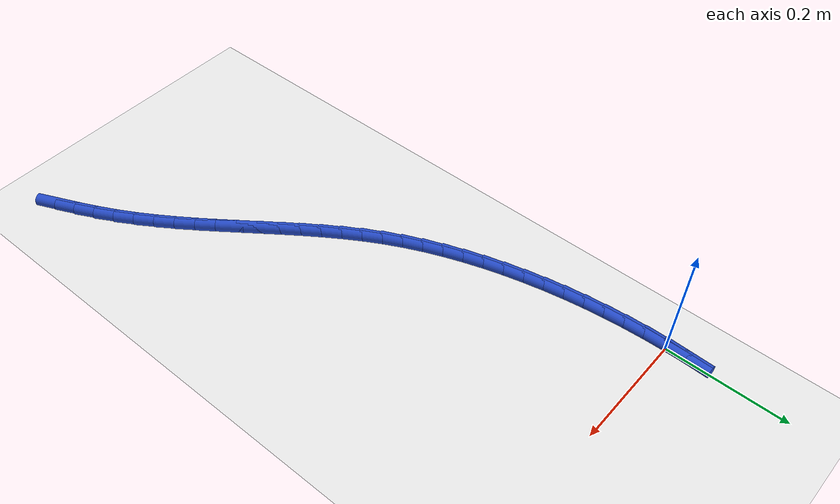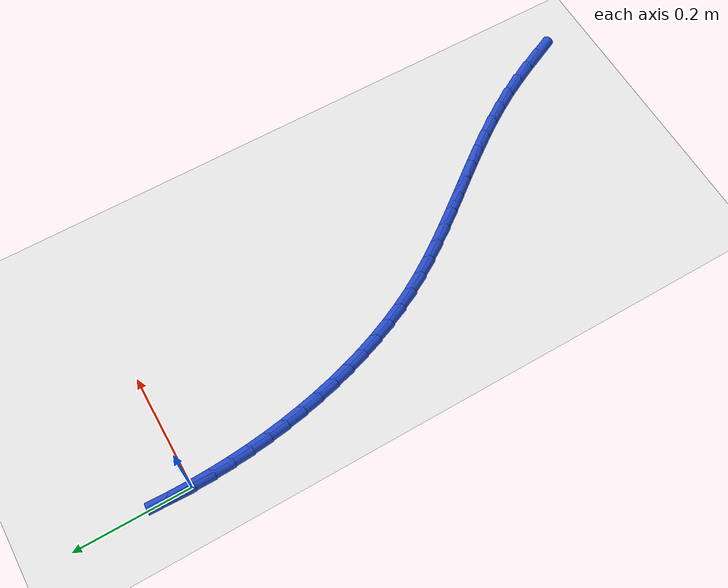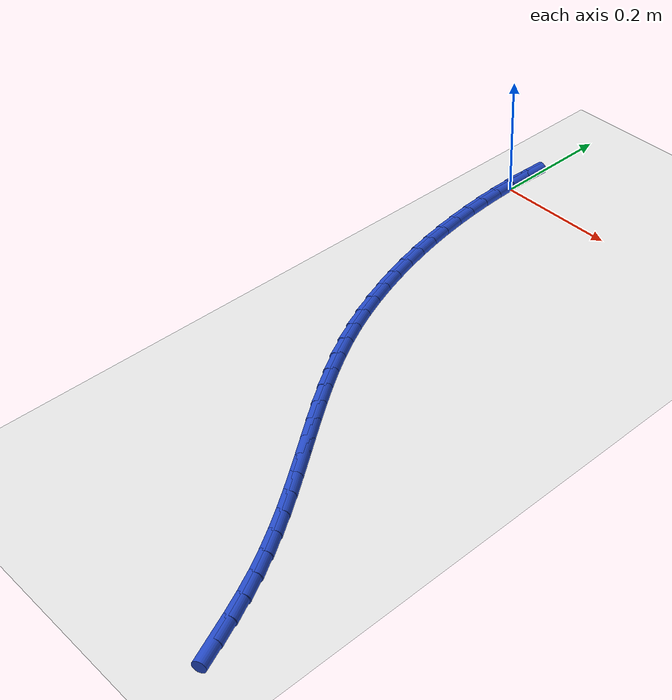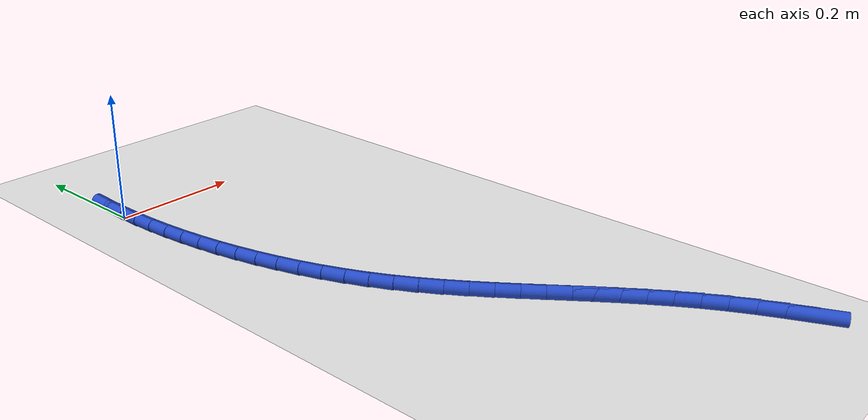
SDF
<sdf version="1.6">
 <world name="default">
  <model name="ground_plane">
   <static>1</static>
   <link name="link">
    <collision name="collision">
     <geometry><plane><normal>0 0 1</normal><size>100 100</size></plane></geometry>
     <surface><friction><ode><mu>100</mu><mu2>50</mu2></ode></friction></surface>
    </collision>
    <visual name="visual">
     <cast_shadows>0</cast_shadows>
     <geometry><plane><normal>0 0 1</normal><size>100 100</size></plane></geometry>
     <material>
      <script><uri>file://media/materials/scripts/gazebo.material</uri><name>Gazebo/WhiteGlow</name></script>
     </material>
    </visual>
   </link>
  </model>
  <model name="line">
   <link name="link_0">
    <pose>2.2551405187698492e-17 -4.163336342344337e-17 0.01 0 1.57 1.567977291956659</pose>
    <collision name="collision">
     <geometry><cylinder><radius>0.01</radius><length>0.08</length></cylinder></geometry>
    </collision>
    <visual name="visual">
     <material>
      <script><name>Gazebo/Blue</name><uri>file://media/materials/scripts/gazebo.material</uri></script>
     </material>
     <geometry><cylinder><radius>0.01</radius><length>0.08</length></cylinder></geometry>
    </visual>
   </link>
   <link name="link_1">
    <pose>9.688667654756615e-05 0.034368649362470555 0.01 0 1.57 1.5357420666125772</pose>
    <collision name="collision">
     <geometry><cylinder><radius>0.01</radius><length>0.08</length></cylinder></geometry>
    </collision>
    <visual name="visual">
     <material>
      <script><name>Gazebo/Blue</name><uri>file://media/materials/scripts/gazebo.material</uri></script>
     </material>
     <geometry><cylinder><radius>0.01</radius><length>0.08</length></cylinder></geometry>
    </visual>
   </link>
   <link name="link_240">
    <pose>0.405744210940734 -0.9147657955321207 0.01 0 1.57 -1.145648559772936</pose>
    <collision name="collision">
     <geometry><cylinder><radius>0.01</radius><length>0.08</length></cylinder></geometry>
    </collision>
    <visual name="visual">
     <material>
      <script><name>Gazebo/Blue</name><uri>file://media/materials/scripts/gazebo.material</uri></script>
     </material>
     <geometry><cylinder><radius>0.01</radius><length>0.08</length></cylinder></geometry>
    </visual>
   </link>
   <link name="link_241">
    <pose>0.39115823064859573 -0.8825501809122498 0.01 0 1.57 -1.1218441042478968</pose>
    <collision name="collision">
     <geometry><cylinder><radius>0.01</radius><length>0.08</length></cylinder></geometry>
    </collision>
    <visual name="visual">
     <material>
      <script><name>Gazebo/Blue</name><uri>file://media/materials/scripts/gazebo.material</uri></script>
     </material>
     <geometry><cylinder><radius>0.01</radius><length>0.08</length></cylinder></geometry>
    </visual>
   </link>
   <link name="link_242">
    <pose>0.3758900189976234 -0.8508578397272476 0.01 0 1.57 -1.0869520263371633</pose>
    <collision name="collision">
     <geometry><cylinder><radius>0.01</radius><length>0.08</length></cylinder></geometry>
    </collision>
    <visual name="visual">
     <material>
      <script><name>Gazebo/Blue</name><uri>file://media/materials/scripts/gazebo.material</uri></script>
     </material>
     <geometry><cylinder><radius>0.01</radius><length>0.08</length></cylinder></geometry>
    </visual>
   </link>
   <link name="link_243">
    <pose>0.35965441798177494 -0.8199627159865862 0.01 0 1.57 -1.0452497021717329</pose>
    <collision name="collision">
     <geometry><cylinder><radius>0.01</radius><length>0.08</length></cylinder></geometry>
    </collision>
    <visual name="visual">
     <material>
      <script><name>Gazebo/Blue</name><uri>file://media/materials/scripts/gazebo.material</uri></script>
     </material>
     <geometry><cylinder><radius>0.01</radius><length>0.08</length></cylinder></geometry>
    </visual>
   </link>
   <link name="link_244">
    <pose>0.34229321175780253 -0.7900270381011502 0.01 0 1.57 -1.0080314570308275</pose>
    <collision name="collision">
     <geometry><cylinder><radius>0.01</radius><length>0.08</length></cylinder></geometry>
    </collision>
    <visual name="visual">
     <material>
      <script><name>Gazebo/Blue</name><uri>file://media/materials/scripts/gazebo.material</uri></script>
     </material>
     <geometry><cylinder><radius>0.01</radius><length>0.08</length></cylinder></geometry>
    </visual>
   </link>
   <link name="link_245">
    <pose>0.323949717346036 -0.7609476701331715 0.01 0 1.57 -0.9772290212421657</pose>
    <collision name="collision">
     <geometry><cylinder><radius>0.01</radius><length>0.08</length></cylinder></geometry>
    </collision>
    <visual name="visual">
     <material>
      <script><name>Gazebo/Blue</name><uri>file://media/materials/scripts/gazebo.material</uri></script>
     </material>
     <geometry><cylinder><radius>0.01</radius><length>0.08</length></cylinder></geometry>
    </visual>
   </link>
   <link name="link_246">
    <pose>0.3048110482549078 -0.7325829329943886 0.01 0 1.57 -0.9530421464760649</pose>
    <collision name="collision">
     <geometry><cylinder><radius>0.01</radius><length>0.08</length></cylinder></geometry>
    </collision>
    <visual name="visual">
     <material>
      <script><name>Gazebo/Blue</name><uri>file://media/materials/scripts/gazebo.material</uri></script>
     </material>
     <geometry><cylinder><radius>0.01</radius><length>0.08</length></cylinder></geometry>
    </visual>
   </link>
   <link name="link_247">
    <pose>0.2850643179928502 -0.7047911475965388 0.01 0 1.57 -0.9355966886234143</pose>
    <collision name="collision">
     <geometry><cylinder><radius>0.01</radius><length>0.08</length></cylinder></geometry>
    </collision>
    <visual name="visual">
     <material>
      <script><name>Gazebo/Blue</name><uri>file://media/materials/scripts/gazebo.material</uri></script>
     </material>
     <geometry><cylinder><radius>0.01</radius><length>0.08</length></cylinder></geometry>
    </visual>
   </link>
   <link name="link_248">
    <pose>0.26489664006829755 -0.6774306348513625 0.01 0 1.57 -0.9249747612606599</pose>
    <collision name="collision">
     <geometry><cylinder><radius>0.01</radius><length>0.08</length></cylinder></geometry>
    </collision>
    <visual name="visual">
     <material>
      <script><name>Gazebo/Blue</name><uri>file://media/materials/scripts/gazebo.material</uri></script>
     </material>
     <geometry><cylinder><radius>0.01</radius><length>0.08</length></cylinder></geometry>
    </visual>
   </link>
   <link name="link_249">
    <pose>0.24449512798968157 -0.6503597156705967 0.01 0 1.57 -0.9212379289192674</pose>
    <collision name="collision">
     <geometry><cylinder><radius>0.01</radius><length>0.08</length></cylinder></geometry>
    </collision>
    <visual name="visual">
     <material>
      <script><name>Gazebo/Blue</name><uri>file://media/materials/scripts/gazebo.material</uri></script>
     </material>
     <geometry><cylinder><radius>0.01</radius><length>0.08</length></cylinder></geometry>
    </visual>
   </link>
   <link name="link_250">
    <pose>0.22404689526543642 -0.6234367109659816 0.01 0 1.57 -0.92444185488973</pose>
    <collision name="collision">
     <geometry><cylinder><radius>0.01</radius><length>0.08</length></cylinder></geometry>
    </collision>
    <visual name="visual">
     <material>
      <script><name>Gazebo/Blue</name><uri>file://media/materials/scripts/gazebo.material</uri></script>
     </material>
     <geometry><cylinder><radius>0.01</radius><length>0.08</length></cylinder></geometry>
    </visual>
   </link>
   <link name="link_251">
    <pose>0.20373905540399392 -0.5965199416492546 0.01 0 1.57 -0.9346415394479095</pose>
    <collision name="collision">
     <geometry><cylinder><radius>0.01</radius><length>0.08</length></cylinder></geometry>
    </collision>
    <visual name="visual">
     <material>
      <script><name>Gazebo/Blue</name><uri>file://media/materials/scripts/gazebo.material</uri></script>
     </material>
     <geometry><cylinder><radius>0.01</radius><length>0.08</length></cylinder></geometry>
    </visual>
   </link>
   <link name="link_252">
    <pose>0.18375872191378825 -0.5694677286321554 0.01 0 1.57 -0.9518865431080559</pose>
    <collision name="collision">
     <geometry><cylinder><radius>0.01</radius><length>0.08</length></cylinder></geometry>
    </collision>
    <visual name="visual">
     <material>
      <script><name>Gazebo/Blue</name><uri>file://media/materials/scripts/gazebo.material</uri></script>
     </material>
     <geometry><cylinder><radius>0.01</radius><length>0.08</length></cylinder></geometry>
    </visual>
   </link>
   <link name="link_253">
    <pose>0.16429300830325122 -0.5421383928264214 0.01 0 1.57 -0.9762056785831541</pose>
    <collision name="collision">
     <geometry><cylinder><radius>0.01</radius><length>0.08</length></cylinder></geometry>
    </collision>
    <visual name="visual">
     <material>
      <script><name>Gazebo/Blue</name><uri>file://media/materials/scripts/gazebo.material</uri></script>
     </material>
     <geometry><cylinder><radius>0.01</radius><length>0.08</length></cylinder></geometry>
    </visual>
   </link>
   <link name="link_254">
    <pose>0.14552902808081702 -0.5143902551437928 0.01 0 1.57 -1.0075809346221503</pose>
    <collision name="collision">
     <geometry><cylinder><radius>0.01</radius><length>0.08</length></cylinder></geometry>
    </collision>
    <visual name="visual">
     <material>
      <script><name>Gazebo/Blue</name><uri>file://media/materials/scripts/gazebo.material</uri></script>
     </material>
     <geometry><cylinder><radius>0.01</radius><length>0.08</length></cylinder></geometry>
    </visual>
   </link>
   <link name="link_255">
    <pose>0.12765389475491745 -0.4860816364960065 0.01 0 1.57 -1.0459112614376413</pose>
    <collision name="collision">
     <geometry><cylinder><radius>0.01</radius><length>0.08</length></cylinder></geometry>
    </collision>
    <visual name="visual">
     <material>
      <script><name>Gazebo/Blue</name><uri>file://media/materials/scripts/gazebo.material</uri></script>
     </material>
     <geometry><cylinder><radius>0.01</radius><length>0.08</length></cylinder></geometry>
    </visual>
   </link>
   <link name="link_256">
    <pose>0.11085472183398654 -0.45707085779480267 0.01 0 1.57 -1.090393413047128</pose>
    <collision name="collision">
     <geometry><cylinder><radius>0.01</radius><length>0.08</length></cylinder></geometry>
    </collision>
    <visual name="visual">
     <material>
      <script><name>Gazebo/Blue</name><uri>file://media/materials/scripts/gazebo.material</uri></script>
     </material>
     <geometry><cylinder><radius>0.01</radius><length>0.08</length></cylinder></geometry>
    </visual>
   </link>
   <link name="link_257">
    <pose>0.09530500165918247 -0.427231994217613 0.01 0 1.57 -1.135271672012633</pose>
    <collision name="collision">
     <geometry><cylinder><radius>0.01</radius><length>0.08</length></cylinder></geometry>
    </collision>
    <visual name="visual">
     <material>
      <script><name>Gazebo/Blue</name><uri>file://media/materials/scripts/gazebo.material</uri></script>
     </material>
     <geometry><cylinder><radius>0.01</radius><length>0.08</length></cylinder></geometry>
    </visual>
   </link>
   <link name="link_258">
    <pose>0.0810469617256469 -0.3965909420904304 0.01 0 1.57 -1.1775748626311153</pose>
    <collision name="collision">
     <geometry><cylinder><radius>0.01</radius><length>0.08</length></cylinder></geometry>
    </collision>
    <visual name="visual">
     <material>
      <script><name>Gazebo/Blue</name><uri>file://media/materials/scripts/gazebo.material</uri></script>
     </material>
     <geometry><cylinder><radius>0.01</radius><length>0.08</length></cylinder></geometry>
    </visual>
   </link>
   <link name="link_259">
    <pose>0.0680494475427178 -0.3652584714713033 0.01 0 1.57 -1.2174797838090863</pose>
    <collision name="collision">
     <geometry><cylinder><radius>0.01</radius><length>0.08</length></cylinder></geometry>
    </collision>
    <visual name="visual">
     <material>
      <script><name>Gazebo/Blue</name><uri>file://media/materials/scripts/gazebo.material</uri></script>
     </material>
     <geometry><cylinder><radius>0.01</radius><length>0.08</length></cylinder></geometry>
    </visual>
   </link>
   <link name="link_260">
    <pose>0.05628050208888108 -0.3333462806268502 0.01 0 1.57 -1.2552029062164287</pose>
    <collision name="collision">
     <geometry><cylinder><radius>0.01</radius><length>0.08</length></cylinder></geometry>
    </collision>
    <visual name="visual">
     <material>
      <script><name>Gazebo/Blue</name><uri>file://media/materials/scripts/gazebo.material</uri></script>
     </material>
     <geometry><cylinder><radius>0.01</radius><length>0.08</length></cylinder></geometry>
    </visual>
   </link>
   <link name="link_261">
    <pose>0.045708168342624075 -0.3009660678236928 0.01 0 1.57 -1.2909614884445564</pose>
    <collision name="collision">
     <geometry><cylinder><radius>0.01</radius><length>0.08</length></cylinder></geometry>
    </collision>
    <visual name="visual">
     <material>
      <script><name>Gazebo/Blue</name><uri>file://media/materials/scripts/gazebo.material</uri></script>
     </material>
     <geometry><cylinder><radius>0.01</radius><length>0.08</length></cylinder></geometry>
    </visual>
   </link>
   <link name="link_262">
    <pose>0.03630048928243284 -0.26822953132844934 0.01 0 1.57 -1.3249705599045025</pose>
    <collision name="collision">
     <geometry><cylinder><radius>0.01</radius><length>0.08</length></cylinder></geometry>
    </collision>
    <visual name="visual">
     <material>
      <script><name>Gazebo/Blue</name><uri>file://media/materials/scripts/gazebo.material</uri></script>
     </material>
     <geometry><cylinder><radius>0.01</radius><length>0.08</length></cylinder></geometry>
    </visual>
   </link>
   <link name="link_263">
    <pose>0.028025507886794573 -0.23524836940774183 0.01 0 1.57 -1.3575758765952248</pose>
    <collision name="collision">
     <geometry><cylinder><radius>0.01</radius><length>0.08</length></cylinder></geometry>
    </collision>
    <visual name="visual">
     <material>
      <script><name>Gazebo/Blue</name><uri>file://media/materials/scripts/gazebo.material</uri></script>
     </material>
     <geometry><cylinder><radius>0.01</radius><length>0.08</length></cylinder></geometry>
    </visual>
   </link>
   <link name="link_264">
    <pose>0.020852977434213178 -0.20212066167045967 0.01 0 1.57 -1.3897008609973516</pose>
    <collision name="collision">
     <geometry><cylinder><radius>0.01</radius><length>0.08</length></cylinder></geometry>
    </collision>
    <visual name="visual">
     <material>
      <script><name>Gazebo/Blue</name><uri>file://media/materials/scripts/gazebo.material</uri></script>
     </material>
     <geometry><cylinder><radius>0.01</radius><length>0.08</length></cylinder></geometry>
    </visual>
   </link>
   <link name="link_265">
    <pose>0.014763114714525552 -0.16886116960703867 0.01 0 1.57 -1.4215603558692005</pose>
    <collision name="collision">
     <geometry><cylinder><radius>0.01</radius><length>0.08</length></cylinder></geometry>
    </collision>
    <visual name="visual">
     <material>
      <script><name>Gazebo/Blue</name><uri>file://media/materials/scripts/gazebo.material</uri></script>
     </material>
     <geometry><cylinder><radius>0.01</radius><length>0.08</length></cylinder></geometry>
    </visual>
   </link>
   <link name="link_266">
    <pose>0.00974009215925911 -0.13545315700006197 0.01 0 1.57 -1.4530354423260021</pose>
    <collision name="collision">
     <geometry><cylinder><radius>0.01</radius><length>0.08</length></cylinder></geometry>
    </collision>
    <visual name="visual">
     <material>
      <script><name>Gazebo/Blue</name><uri>file://media/materials/scripts/gazebo.material</uri></script>
     </material>
     <geometry><cylinder><radius>0.01</radius><length>0.08</length></cylinder></geometry>
    </visual>
   </link>
   <link name="link_267">
    <pose>0.005768089589293796 -0.10187982879270108 0.01 0 1.57 -1.4840124964001051</pose>
    <collision name="collision">
     <geometry><cylinder><radius>0.01</radius><length>0.08</length></cylinder></geometry>
    </collision>
    <visual name="visual">
     <material>
      <script><name>Gazebo/Blue</name><uri>file://media/materials/scripts/gazebo.material</uri></script>
     </material>
     <geometry><cylinder><radius>0.01</radius><length>0.08</length></cylinder></geometry>
    </visual>
   </link>
   <link name="link_268">
    <pose>0.002831286825509082 -0.06812438992812433 0.01 0 1.57 -1.514385611929701</pose>
    <collision name="collision">
     <geometry><cylinder><radius>0.01</radius><length>0.08</length></cylinder></geometry>
    </collision>
    <visual name="visual">
     <material>
      <script><name>Gazebo/Blue</name><uri>file://media/materials/scripts/gazebo.material</uri></script>
     </material>
     <geometry><cylinder><radius>0.01</radius><length>0.08</length></cylinder></geometry>
    </visual>
   </link>
   <link name="link_269">
    <pose>0.0009138636887845641 -0.03417004534950012 0.01 0 1.57 -1.5440581154284783</pose>
    <collision name="collision">
     <geometry><cylinder><radius>0.01</radius><length>0.08</length></cylinder></geometry>
    </collision>
    <visual name="visual">
     <material>
      <script><name>Gazebo/Blue</name><uri>file://media/materials/scripts/gazebo.material</uri></script>
     </material>
     <geometry><cylinder><radius>0.01</radius><length>0.08</length></cylinder></geometry>
    </visual>
   </link>
   <link name="link_270">
    <pose>2.6020852139652106e-18 2.0122792321330962e-16 0.01 0 1.57 1.5686489427949388</pose>
    <collision name="collision">
     <geometry><cylinder><radius>0.01</radius><length>0.08</length></cylinder></geometry>
    </collision>
    <visual name="visual">
     <material>
      <script><name>Gazebo/Blue</name><uri>file://media/materials/scripts/gazebo.material</uri></script>
     </material>
     <geometry><cylinder><radius>0.01</radius><length>0.08</length></cylinder></geometry>
    </visual>
   </link>
   <link name="link_271">
    <pose>7.387558003498287e-05 0.034402541177209214 0.01 0 1.57 1.5406254161982746</pose>
    <collision name="collision">
     <geometry><cylinder><radius>0.01</radius><length>0.08</length></cylinder></geometry>
    </collision>
    <visual name="visual">
     <material>
      <script><name>Gazebo/Blue</name><uri>file://media/materials/scripts/gazebo.material</uri></script>
     </material>
     <geometry><cylinder><radius>0.01</radius><length>0.08</length></cylinder></geometry>
    </visual>
   </link>
  </model>
 </world>
</sdf>
